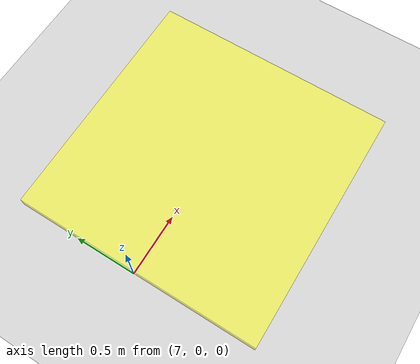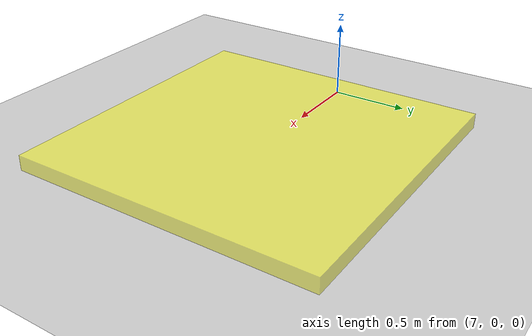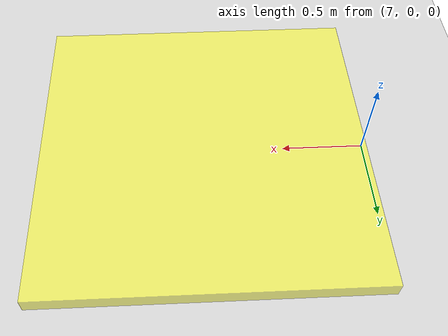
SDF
<?xml version="1.0" ?>
<sdf version="1.6">
  <world name="world_multi_robot">

    <include>
      <uri>model://sun</uri>
    </include>
    <include>
      <uri>model://ground_plane</uri>
    </include>

    <physics type="ode">
      <real_time_update_rate>1000.0</real_time_update_rate>
      <max_step_size>0.001</max_step_size>
    </physics>

    <!-- Area luas untuk multi robot -->
    <model name="zona_tujuan">
      <pose>8 0 0.05 0 0 0</pose>
      <static>true</static>
      <link name="link">
        <collision name="collision">
          <geometry><box><size>2 2 0.1</size></box></geometry>
        </collision>
        <visual name="visual">
          <geometry><box><size>2 2 0.1</size></box></geometry>
          <material>
            <ambient>1 1 0 0.5</ambient>
            <diffuse>1 1 0 0.5</diffuse>
          </material>
        </visual>
      </link>
    </model>

    <gui fullscreen="0">
      <camera name="user_camera">
        <pose>0 0 25 0 1.57 0</pose>
        <view_controller>orbit</view_controller>
      </camera>
    </gui>

  </world>
</sdf>
